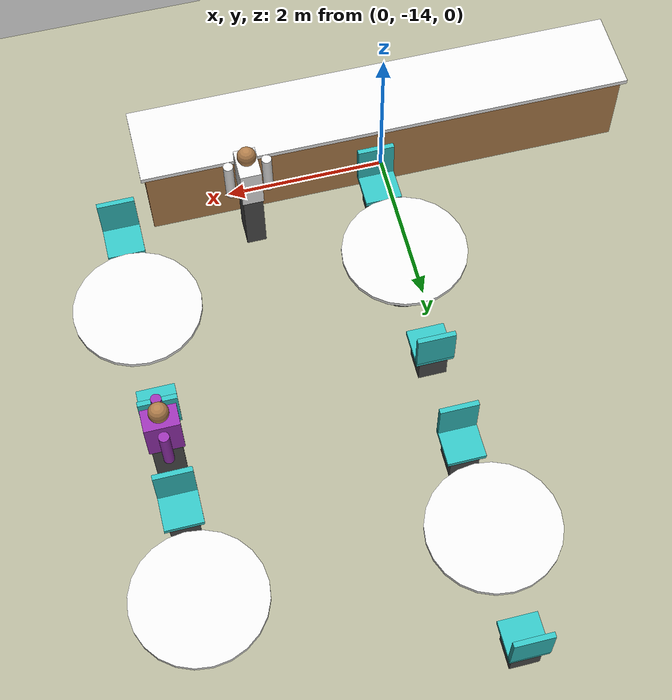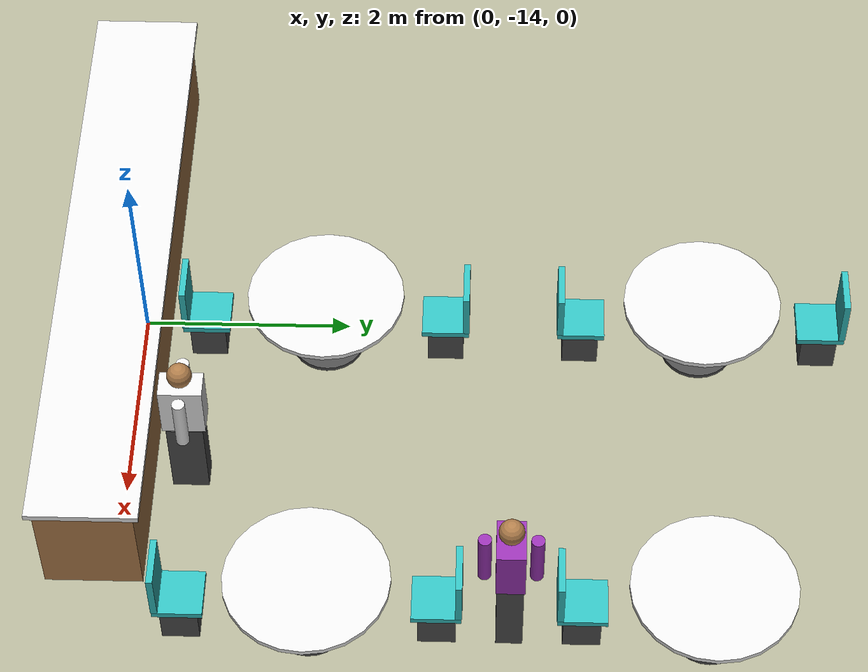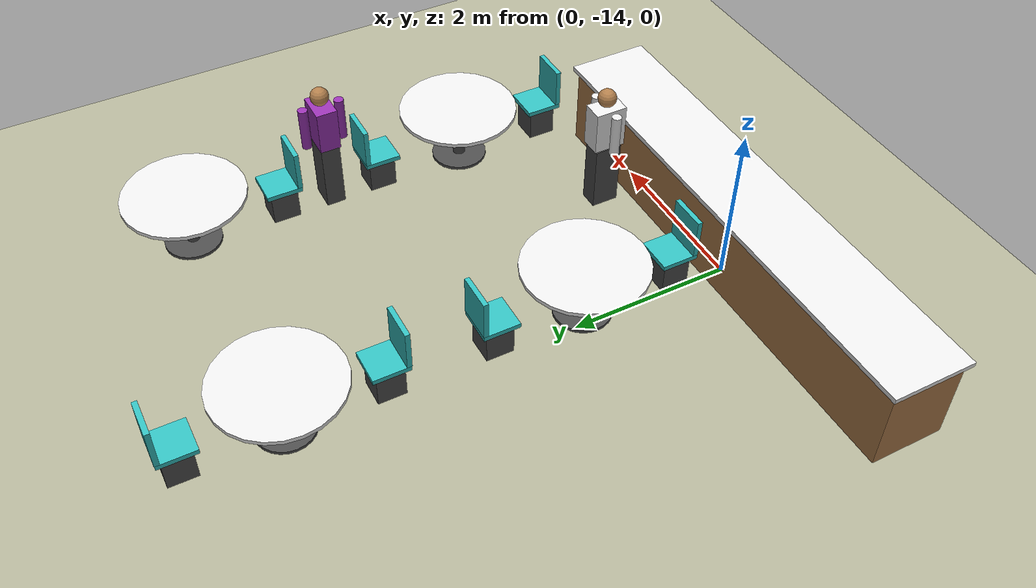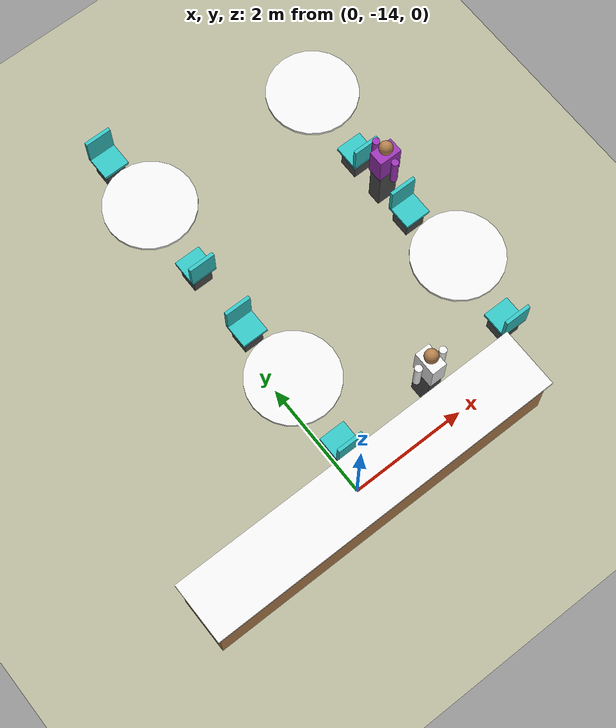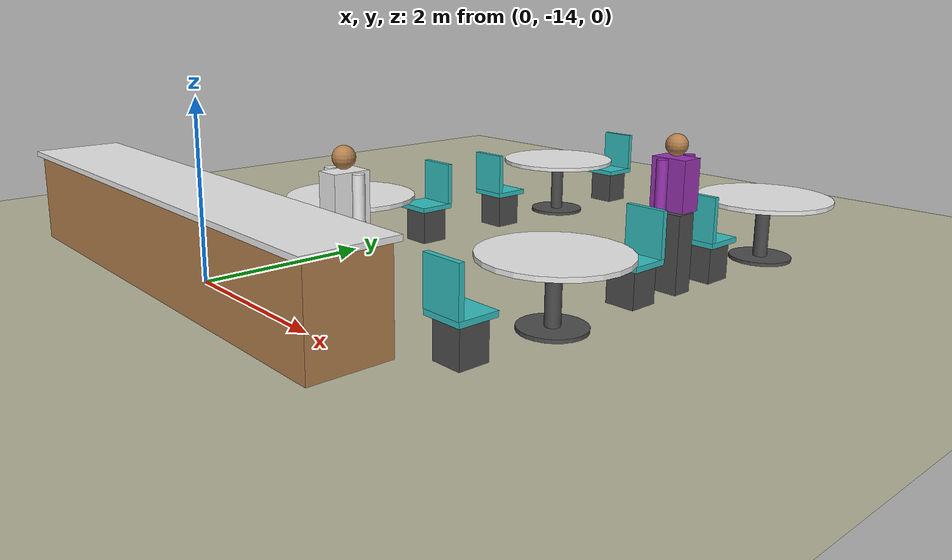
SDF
<sdf version="1.6">
 <world name="smart_building">
  <model name="ground_plane">
   <static>true</static>
   <link name="link">
    <collision name="collision">
     <geometry><plane><normal>0 0 1</normal><size>100 100</size></plane></geometry>
     <surface><friction><ode><mu>1.0</mu><mu2>1.0</mu2></ode></friction></surface>
    </collision>
    <visual name="visual">
     <geometry><plane><normal>0 0 1</normal><size>100 100</size></plane></geometry>
     <material>
      <script><uri>file://media/materials/scripts/gazebo.material</uri><name>Gazebo/Residential</name></script>
     </material>
    </visual>
   </link>
  </model>
  <model name="cafe_table_4">
   <static>true</static>
   <pose>0.2000 -8.6000 0.0000 0.0000 0.0000 0.0000</pose>
   <link name="link_0">
    <pose>0.0000 0.0000 0.7250 0.0000 0.0000 0.0000</pose>
    <collision name="link_0_collision">
     <geometry><cylinder><radius>0.7500</radius><length>0.0500</length></cylinder></geometry>
    </collision>
    <visual name="link_0_visual">
     <geometry><cylinder><radius>0.7500</radius><length>0.0500</length></cylinder></geometry>
     <material>
      <script><uri>file://media/materials/scripts/gazebo.material</uri><name>Gazebo/White</name></script>
     </material>
    </visual>
   </link>
   <link name="link_1">
    <pose>0.0000 0.0000 0.3500 0.0000 0.0000 0.0000</pose>
    <collision name="link_1_collision">
     <geometry><cylinder><radius>0.0800</radius><length>0.7000</length></cylinder></geometry>
    </collision>
    <visual name="link_1_visual">
     <geometry><cylinder><radius>0.0800</radius><length>0.7000</length></cylinder></geometry>
     <material>
      <script><uri>file://media/materials/scripts/gazebo.material</uri><name>Gazebo/DarkGrey</name></script>
     </material>
    </visual>
   </link>
   <link name="link_2">
    <pose>0.0000 0.0000 0.0200 0.0000 0.0000 0.0000</pose>
    <collision name="link_2_collision">
     <geometry><cylinder><radius>0.3500</radius><length>0.0400</length></cylinder></geometry>
    </collision>
    <visual name="link_2_visual">
     <geometry><cylinder><radius>0.3500</radius><length>0.0400</length></cylinder></geometry>
     <material>
      <script><uri>file://media/materials/scripts/gazebo.material</uri><name>Gazebo/DarkGrey</name></script>
     </material>
    </visual>
   </link>
  </model>
  <model name="cafe_chair_4_0">
   <static>true</static>
   <pose>0.2000 -7.4500 0.0000 0.0000 0.0000 3.1416</pose>
   <link name="link_0">
    <pose>0.0000 0.0000 0.4400 0.0000 0.0000 0.0000</pose>
    <collision name="link_0_collision">
     <geometry><box><size>0.4500 0.4500 0.0600</size></box></geometry>
    </collision>
    <visual name="link_0_visual">
     <geometry><box><size>0.4500 0.4500 0.0600</size></box></geometry>
     <material>
      <script><uri>file://media/materials/scripts/gazebo.material</uri><name>Gazebo/Turquoise</name></script>
     </material>
    </visual>
   </link>
   <link name="link_1">
    <pose>0.0000 -0.2000 0.7200 0.0000 0.0000 0.0000</pose>
    <collision name="link_1_collision">
     <geometry><box><size>0.4500 0.0600 0.5000</size></box></geometry>
    </collision>
    <visual name="link_1_visual">
     <geometry><box><size>0.4500 0.0600 0.5000</size></box></geometry>
     <material>
      <script><uri>file://media/materials/scripts/gazebo.material</uri><name>Gazebo/Turquoise</name></script>
     </material>
    </visual>
   </link>
   <link name="link_2">
    <pose>0.0000 0.0000 0.2100 0.0000 0.0000 0.0000</pose>
    <collision name="link_2_collision">
     <geometry><box><size>0.3400 0.3400 0.4200</size></box></geometry>
    </collision>
    <visual name="link_2_visual">
     <geometry><box><size>0.3400 0.3400 0.4200</size></box></geometry>
     <material>
      <script><uri>file://media/materials/scripts/gazebo.material</uri><name>Gazebo/DarkGrey</name></script>
     </material>
    </visual>
   </link>
  </model>
  <model name="cafe_chair_4_1">
   <static>true</static>
   <pose>0.2000 -9.7500 0.0000 0.0000 0.0000 0.0000</pose>
   <link name="link_0">
    <pose>0.0000 0.0000 0.4400 0.0000 0.0000 0.0000</pose>
    <collision name="link_0_collision">
     <geometry><box><size>0.4500 0.4500 0.0600</size></box></geometry>
    </collision>
    <visual name="link_0_visual">
     <geometry><box><size>0.4500 0.4500 0.0600</size></box></geometry>
     <material>
      <script><uri>file://media/materials/scripts/gazebo.material</uri><name>Gazebo/Turquoise</name></script>
     </material>
    </visual>
   </link>
   <link name="link_1">
    <pose>0.0000 -0.2000 0.7200 0.0000 0.0000 0.0000</pose>
    <collision name="link_1_collision">
     <geometry><box><size>0.4500 0.0600 0.5000</size></box></geometry>
    </collision>
    <visual name="link_1_visual">
     <geometry><box><size>0.4500 0.0600 0.5000</size></box></geometry>
     <material>
      <script><uri>file://media/materials/scripts/gazebo.material</uri><name>Gazebo/Turquoise</name></script>
     </material>
    </visual>
   </link>
   <link name="link_2">
    <pose>0.0000 0.0000 0.2100 0.0000 0.0000 0.0000</pose>
    <collision name="link_2_collision">
     <geometry><box><size>0.3400 0.3400 0.4200</size></box></geometry>
    </collision>
    <visual name="link_2_visual">
     <geometry><box><size>0.3400 0.3400 0.4200</size></box></geometry>
     <material>
      <script><uri>file://media/materials/scripts/gazebo.material</uri><name>Gazebo/DarkGrey</name></script>
     </material>
    </visual>
   </link>
  </model>
  <model name="cafe_table_5">
   <static>true</static>
   <pose>3.4000 -8.6000 0.0000 0.0000 0.0000 0.0000</pose>
   <link name="link_0">
    <pose>0.0000 0.0000 0.7250 0.0000 0.0000 0.0000</pose>
    <collision name="link_0_collision">
     <geometry><cylinder><radius>0.7500</radius><length>0.0500</length></cylinder></geometry>
    </collision>
    <visual name="link_0_visual">
     <geometry><cylinder><radius>0.7500</radius><length>0.0500</length></cylinder></geometry>
     <material>
      <script><uri>file://media/materials/scripts/gazebo.material</uri><name>Gazebo/White</name></script>
     </material>
    </visual>
   </link>
   <link name="link_1">
    <pose>0.0000 0.0000 0.3500 0.0000 0.0000 0.0000</pose>
    <collision name="link_1_collision">
     <geometry><cylinder><radius>0.0800</radius><length>0.7000</length></cylinder></geometry>
    </collision>
    <visual name="link_1_visual">
     <geometry><cylinder><radius>0.0800</radius><length>0.7000</length></cylinder></geometry>
     <material>
      <script><uri>file://media/materials/scripts/gazebo.material</uri><name>Gazebo/DarkGrey</name></script>
     </material>
    </visual>
   </link>
   <link name="link_2">
    <pose>0.0000 0.0000 0.0200 0.0000 0.0000 0.0000</pose>
    <collision name="link_2_collision">
     <geometry><cylinder><radius>0.3500</radius><length>0.0400</length></cylinder></geometry>
    </collision>
    <visual name="link_2_visual">
     <geometry><cylinder><radius>0.3500</radius><length>0.0400</length></cylinder></geometry>
     <material>
      <script><uri>file://media/materials/scripts/gazebo.material</uri><name>Gazebo/DarkGrey</name></script>
     </material>
    </visual>
   </link>
  </model>
  <model name="cafe_chair_5_1">
   <static>true</static>
   <pose>3.4000 -9.7500 0.0000 0.0000 0.0000 0.0000</pose>
   <link name="link_0">
    <pose>0.0000 0.0000 0.4400 0.0000 0.0000 0.0000</pose>
    <collision name="link_0_collision">
     <geometry><box><size>0.4500 0.4500 0.0600</size></box></geometry>
    </collision>
    <visual name="link_0_visual">
     <geometry><box><size>0.4500 0.4500 0.0600</size></box></geometry>
     <material>
      <script><uri>file://media/materials/scripts/gazebo.material</uri><name>Gazebo/Turquoise</name></script>
     </material>
    </visual>
   </link>
   <link name="link_1">
    <pose>0.0000 -0.2000 0.7200 0.0000 0.0000 0.0000</pose>
    <collision name="link_1_collision">
     <geometry><box><size>0.4500 0.0600 0.5000</size></box></geometry>
    </collision>
    <visual name="link_1_visual">
     <geometry><box><size>0.4500 0.0600 0.5000</size></box></geometry>
     <material>
      <script><uri>file://media/materials/scripts/gazebo.material</uri><name>Gazebo/Turquoise</name></script>
     </material>
    </visual>
   </link>
   <link name="link_2">
    <pose>0.0000 0.0000 0.2100 0.0000 0.0000 0.0000</pose>
    <collision name="link_2_collision">
     <geometry><box><size>0.3400 0.3400 0.4200</size></box></geometry>
    </collision>
    <visual name="link_2_visual">
     <geometry><box><size>0.3400 0.3400 0.4200</size></box></geometry>
     <material>
      <script><uri>file://media/materials/scripts/gazebo.material</uri><name>Gazebo/DarkGrey</name></script>
     </material>
    </visual>
   </link>
  </model>
  <model name="cafe_table_7">
   <static>true</static>
   <pose>0.2000 -12.2000 0.0000 0.0000 0.0000 0.0000</pose>
   <link name="link_0">
    <pose>0.0000 0.0000 0.7250 0.0000 0.0000 0.0000</pose>
    <collision name="link_0_collision">
     <geometry><cylinder><radius>0.7500</radius><length>0.0500</length></cylinder></geometry>
    </collision>
    <visual name="link_0_visual">
     <geometry><cylinder><radius>0.7500</radius><length>0.0500</length></cylinder></geometry>
     <material>
      <script><uri>file://media/materials/scripts/gazebo.material</uri><name>Gazebo/White</name></script>
     </material>
    </visual>
   </link>
   <link name="link_1">
    <pose>0.0000 0.0000 0.3500 0.0000 0.0000 0.0000</pose>
    <collision name="link_1_collision">
     <geometry><cylinder><radius>0.0800</radius><length>0.7000</length></cylinder></geometry>
    </collision>
    <visual name="link_1_visual">
     <geometry><cylinder><radius>0.0800</radius><length>0.7000</length></cylinder></geometry>
     <material>
      <script><uri>file://media/materials/scripts/gazebo.material</uri><name>Gazebo/DarkGrey</name></script>
     </material>
    </visual>
   </link>
   <link name="link_2">
    <pose>0.0000 0.0000 0.0200 0.0000 0.0000 0.0000</pose>
    <collision name="link_2_collision">
     <geometry><cylinder><radius>0.3500</radius><length>0.0400</length></cylinder></geometry>
    </collision>
    <visual name="link_2_visual">
     <geometry><cylinder><radius>0.3500</radius><length>0.0400</length></cylinder></geometry>
     <material>
      <script><uri>file://media/materials/scripts/gazebo.material</uri><name>Gazebo/DarkGrey</name></script>
     </material>
    </visual>
   </link>
  </model>
  <model name="cafe_chair_7_0">
   <static>true</static>
   <pose>0.2000 -11.0500 0.0000 0.0000 0.0000 3.1416</pose>
   <link name="link_0">
    <pose>0.0000 0.0000 0.4400 0.0000 0.0000 0.0000</pose>
    <collision name="link_0_collision">
     <geometry><box><size>0.4500 0.4500 0.0600</size></box></geometry>
    </collision>
    <visual name="link_0_visual">
     <geometry><box><size>0.4500 0.4500 0.0600</size></box></geometry>
     <material>
      <script><uri>file://media/materials/scripts/gazebo.material</uri><name>Gazebo/Turquoise</name></script>
     </material>
    </visual>
   </link>
   <link name="link_1">
    <pose>0.0000 -0.2000 0.7200 0.0000 0.0000 0.0000</pose>
    <collision name="link_1_collision">
     <geometry><box><size>0.4500 0.0600 0.5000</size></box></geometry>
    </collision>
    <visual name="link_1_visual">
     <geometry><box><size>0.4500 0.0600 0.5000</size></box></geometry>
     <material>
      <script><uri>file://media/materials/scripts/gazebo.material</uri><name>Gazebo/Turquoise</name></script>
     </material>
    </visual>
   </link>
   <link name="link_2">
    <pose>0.0000 0.0000 0.2100 0.0000 0.0000 0.0000</pose>
    <collision name="link_2_collision">
     <geometry><box><size>0.3400 0.3400 0.4200</size></box></geometry>
    </collision>
    <visual name="link_2_visual">
     <geometry><box><size>0.3400 0.3400 0.4200</size></box></geometry>
     <material>
      <script><uri>file://media/materials/scripts/gazebo.material</uri><name>Gazebo/DarkGrey</name></script>
     </material>
    </visual>
   </link>
  </model>
  <model name="cafe_chair_7_1">
   <static>true</static>
   <pose>0.2000 -13.3500 0.0000 0.0000 0.0000 0.0000</pose>
   <link name="link_0">
    <pose>0.0000 0.0000 0.4400 0.0000 0.0000 0.0000</pose>
    <collision name="link_0_collision">
     <geometry><box><size>0.4500 0.4500 0.0600</size></box></geometry>
    </collision>
    <visual name="link_0_visual">
     <geometry><box><size>0.4500 0.4500 0.0600</size></box></geometry>
     <material>
      <script><uri>file://media/materials/scripts/gazebo.material</uri><name>Gazebo/Turquoise</name></script>
     </material>
    </visual>
   </link>
   <link name="link_1">
    <pose>0.0000 -0.2000 0.7200 0.0000 0.0000 0.0000</pose>
    <collision name="link_1_collision">
     <geometry><box><size>0.4500 0.0600 0.5000</size></box></geometry>
    </collision>
    <visual name="link_1_visual">
     <geometry><box><size>0.4500 0.0600 0.5000</size></box></geometry>
     <material>
      <script><uri>file://media/materials/scripts/gazebo.material</uri><name>Gazebo/Turquoise</name></script>
     </material>
    </visual>
   </link>
   <link name="link_2">
    <pose>0.0000 0.0000 0.2100 0.0000 0.0000 0.0000</pose>
    <collision name="link_2_collision">
     <geometry><box><size>0.3400 0.3400 0.4200</size></box></geometry>
    </collision>
    <visual name="link_2_visual">
     <geometry><box><size>0.3400 0.3400 0.4200</size></box></geometry>
     <material>
      <script><uri>file://media/materials/scripts/gazebo.material</uri><name>Gazebo/DarkGrey</name></script>
     </material>
    </visual>
   </link>
  </model>
  <model name="cafe_table_8">
   <static>true</static>
   <pose>3.4000 -12.2000 0.0000 0.0000 0.0000 0.0000</pose>
   <link name="link_0">
    <pose>0.0000 0.0000 0.7250 0.0000 0.0000 0.0000</pose>
    <collision name="link_0_collision">
     <geometry><cylinder><radius>0.7500</radius><length>0.0500</length></cylinder></geometry>
    </collision>
    <visual name="link_0_visual">
     <geometry><cylinder><radius>0.7500</radius><length>0.0500</length></cylinder></geometry>
     <material>
      <script><uri>file://media/materials/scripts/gazebo.material</uri><name>Gazebo/White</name></script>
     </material>
    </visual>
   </link>
   <link name="link_1">
    <pose>0.0000 0.0000 0.3500 0.0000 0.0000 0.0000</pose>
    <collision name="link_1_collision">
     <geometry><cylinder><radius>0.0800</radius><length>0.7000</length></cylinder></geometry>
    </collision>
    <visual name="link_1_visual">
     <geometry><cylinder><radius>0.0800</radius><length>0.7000</length></cylinder></geometry>
     <material>
      <script><uri>file://media/materials/scripts/gazebo.material</uri><name>Gazebo/DarkGrey</name></script>
     </material>
    </visual>
   </link>
   <link name="link_2">
    <pose>0.0000 0.0000 0.0200 0.0000 0.0000 0.0000</pose>
    <collision name="link_2_collision">
     <geometry><cylinder><radius>0.3500</radius><length>0.0400</length></cylinder></geometry>
    </collision>
    <visual name="link_2_visual">
     <geometry><cylinder><radius>0.3500</radius><length>0.0400</length></cylinder></geometry>
     <material>
      <script><uri>file://media/materials/scripts/gazebo.material</uri><name>Gazebo/DarkGrey</name></script>
     </material>
    </visual>
   </link>
  </model>
  <model name="cafe_chair_8_0">
   <static>true</static>
   <pose>3.4000 -11.0500 0.0000 0.0000 0.0000 3.1416</pose>
   <link name="link_0">
    <pose>0.0000 0.0000 0.4400 0.0000 0.0000 0.0000</pose>
    <collision name="link_0_collision">
     <geometry><box><size>0.4500 0.4500 0.0600</size></box></geometry>
    </collision>
    <visual name="link_0_visual">
     <geometry><box><size>0.4500 0.4500 0.0600</size></box></geometry>
     <material>
      <script><uri>file://media/materials/scripts/gazebo.material</uri><name>Gazebo/Turquoise</name></script>
     </material>
    </visual>
   </link>
   <link name="link_1">
    <pose>0.0000 -0.2000 0.7200 0.0000 0.0000 0.0000</pose>
    <collision name="link_1_collision">
     <geometry><box><size>0.4500 0.0600 0.5000</size></box></geometry>
    </collision>
    <visual name="link_1_visual">
     <geometry><box><size>0.4500 0.0600 0.5000</size></box></geometry>
     <material>
      <script><uri>file://media/materials/scripts/gazebo.material</uri><name>Gazebo/Turquoise</name></script>
     </material>
    </visual>
   </link>
   <link name="link_2">
    <pose>0.0000 0.0000 0.2100 0.0000 0.0000 0.0000</pose>
    <collision name="link_2_collision">
     <geometry><box><size>0.3400 0.3400 0.4200</size></box></geometry>
    </collision>
    <visual name="link_2_visual">
     <geometry><box><size>0.3400 0.3400 0.4200</size></box></geometry>
     <material>
      <script><uri>file://media/materials/scripts/gazebo.material</uri><name>Gazebo/DarkGrey</name></script>
     </material>
    </visual>
   </link>
  </model>
  <model name="cafe_chair_8_1">
   <static>true</static>
   <pose>3.4000 -13.3500 0.0000 0.0000 0.0000 0.0000</pose>
   <link name="link_0">
    <pose>0.0000 0.0000 0.4400 0.0000 0.0000 0.0000</pose>
    <collision name="link_0_collision">
     <geometry><box><size>0.4500 0.4500 0.0600</size></box></geometry>
    </collision>
    <visual name="link_0_visual">
     <geometry><box><size>0.4500 0.4500 0.0600</size></box></geometry>
     <material>
      <script><uri>file://media/materials/scripts/gazebo.material</uri><name>Gazebo/Turquoise</name></script>
     </material>
    </visual>
   </link>
   <link name="link_1">
    <pose>0.0000 -0.2000 0.7200 0.0000 0.0000 0.0000</pose>
    <collision name="link_1_collision">
     <geometry><box><size>0.4500 0.0600 0.5000</size></box></geometry>
    </collision>
    <visual name="link_1_visual">
     <geometry><box><size>0.4500 0.0600 0.5000</size></box></geometry>
     <material>
      <script><uri>file://media/materials/scripts/gazebo.material</uri><name>Gazebo/Turquoise</name></script>
     </material>
    </visual>
   </link>
   <link name="link_2">
    <pose>0.0000 0.0000 0.2100 0.0000 0.0000 0.0000</pose>
    <collision name="link_2_collision">
     <geometry><box><size>0.3400 0.3400 0.4200</size></box></geometry>
    </collision>
    <visual name="link_2_visual">
     <geometry><box><size>0.3400 0.3400 0.4200</size></box></geometry>
     <material>
      <script><uri>file://media/materials/scripts/gazebo.material</uri><name>Gazebo/DarkGrey</name></script>
     </material>
    </visual>
   </link>
  </model>
  <model name="cafe_counter">
   <static>true</static>
   <pose>0.0000 -14.2000 0.0000 0.0000 0.0000 0.0000</pose>
   <link name="link_0">
    <pose>0.0000 0.0000 0.5250 0.0000 0.0000 0.0000</pose>
    <collision name="link_0_collision">
     <geometry><box><size>6.0000 0.9000 1.0500</size></box></geometry>
    </collision>
    <visual name="link_0_visual">
     <geometry><box><size>6.0000 0.9000 1.0500</size></box></geometry>
     <material>
      <script><uri>file://media/materials/scripts/gazebo.material</uri><name>Gazebo/Wood</name></script>
     </material>
    </visual>
   </link>
   <link name="link_1">
    <pose>0.0000 0.0000 1.0800 0.0000 0.0000 0.0000</pose>
    <collision name="link_1_collision">
     <geometry><box><size>6.1000 1.0200 0.0600</size></box></geometry>
    </collision>
    <visual name="link_1_visual">
     <geometry><box><size>6.1000 1.0200 0.0600</size></box></geometry>
     <material>
      <script><uri>file://media/materials/scripts/gazebo.material</uri><name>Gazebo/White</name></script>
     </material>
    </visual>
   </link>
  </model>
  <model name="person_cafe_0">
   <static>true</static>
   <pose>1.8000 -13.4000 0.0000 0.0000 0.0000 -1.5708</pose>
   <link name="link_0">
    <pose>0.0000 0.0000 0.4250 0.0000 0.0000 0.0000</pose>
    <collision name="link_0_collision">
     <geometry><box><size>0.3400 0.2400 0.8500</size></box></geometry>
    </collision>
    <visual name="link_0_visual">
     <geometry><box><size>0.3400 0.2400 0.8500</size></box></geometry>
     <material>
      <script><uri>file://media/materials/scripts/gazebo.material</uri><name>Gazebo/DarkGrey</name></script>
     </material>
    </visual>
   </link>
   <link name="link_1">
    <pose>0.0000 0.0000 1.1500 0.0000 0.0000 0.0000</pose>
    <collision name="link_1_collision">
     <geometry><box><size>0.4000 0.2600 0.5500</size></box></geometry>
    </collision>
    <visual name="link_1_visual">
     <geometry><box><size>0.4000 0.2600 0.5500</size></box></geometry>
     <material>
      <script><uri>file://media/materials/scripts/gazebo.material</uri><name>Gazebo/White</name></script>
     </material>
    </visual>
   </link>
   <link name="link_2">
    <pose>0.0000 0.2300 1.1500 0.0000 0.0000 0.0000</pose>
    <collision name="link_2_collision">
     <geometry><cylinder><radius>0.0600</radius><length>0.5500</length></cylinder></geometry>
    </collision>
    <visual name="link_2_visual">
     <geometry><cylinder><radius>0.0600</radius><length>0.5500</length></cylinder></geometry>
     <material>
      <script><uri>file://media/materials/scripts/gazebo.material</uri><name>Gazebo/White</name></script>
     </material>
    </visual>
   </link>
   <link name="link_3">
    <pose>0.0000 -0.2300 1.1500 0.0000 0.0000 0.0000</pose>
    <collision name="link_3_collision">
     <geometry><cylinder><radius>0.0600</radius><length>0.5500</length></cylinder></geometry>
    </collision>
    <visual name="link_3_visual">
     <geometry><cylinder><radius>0.0600</radius><length>0.5500</length></cylinder></geometry>
     <material>
      <script><uri>file://media/materials/scripts/gazebo.material</uri><name>Gazebo/White</name></script>
     </material>
    </visual>
   </link>
   <link name="link_4">
    <pose>0.0000 0.0000 1.5500 0.0000 0.0000 0.0000</pose>
    <collision name="link_4_collision"><geometry><sphere><radius>0.1150</radius></sphere></geometry></collision>
    <visual name="link_4_visual">
     <geometry><sphere><radius>0.1150</radius></sphere></geometry>
     <material>
      <script><uri>file://media/materials/scripts/gazebo.material</uri><name>Gazebo/Wood</name></script>
     </material>
    </visual>
   </link>
  </model>
  <model name="person_cafe_2">
   <static>true</static>
   <pose>3.4000 -10.4000 0.0000 0.0000 0.0000 0.0000</pose>
   <link name="link_0">
    <pose>0.0000 0.0000 0.4250 0.0000 0.0000 0.0000</pose>
    <collision name="link_0_collision">
     <geometry><box><size>0.3400 0.2400 0.8500</size></box></geometry>
    </collision>
    <visual name="link_0_visual">
     <geometry><box><size>0.3400 0.2400 0.8500</size></box></geometry>
     <material>
      <script><uri>file://media/materials/scripts/gazebo.material</uri><name>Gazebo/DarkGrey</name></script>
     </material>
    </visual>
   </link>
   <link name="link_1">
    <pose>0.0000 0.0000 1.1500 0.0000 0.0000 0.0000</pose>
    <collision name="link_1_collision">
     <geometry><box><size>0.4000 0.2600 0.5500</size></box></geometry>
    </collision>
    <visual name="link_1_visual">
     <geometry><box><size>0.4000 0.2600 0.5500</size></box></geometry>
     <material>
      <script><uri>file://media/materials/scripts/gazebo.material</uri><name>Gazebo/Purple</name></script>
     </material>
    </visual>
   </link>
   <link name="link_2">
    <pose>0.0000 0.2300 1.1500 0.0000 0.0000 0.0000</pose>
    <collision name="link_2_collision">
     <geometry><cylinder><radius>0.0600</radius><length>0.5500</length></cylinder></geometry>
    </collision>
    <visual name="link_2_visual">
     <geometry><cylinder><radius>0.0600</radius><length>0.5500</length></cylinder></geometry>
     <material>
      <script><uri>file://media/materials/scripts/gazebo.material</uri><name>Gazebo/Purple</name></script>
     </material>
    </visual>
   </link>
   <link name="link_3">
    <pose>0.0000 -0.2300 1.1500 0.0000 0.0000 0.0000</pose>
    <collision name="link_3_collision">
     <geometry><cylinder><radius>0.0600</radius><length>0.5500</length></cylinder></geometry>
    </collision>
    <visual name="link_3_visual">
     <geometry><cylinder><radius>0.0600</radius><length>0.5500</length></cylinder></geometry>
     <material>
      <script><uri>file://media/materials/scripts/gazebo.material</uri><name>Gazebo/Purple</name></script>
     </material>
    </visual>
   </link>
   <link name="link_4">
    <pose>0.0000 0.0000 1.5500 0.0000 0.0000 0.0000</pose>
    <collision name="link_4_collision"><geometry><sphere><radius>0.1150</radius></sphere></geometry></collision>
    <visual name="link_4_visual">
     <geometry><sphere><radius>0.1150</radius></sphere></geometry>
     <material>
      <script><uri>file://media/materials/scripts/gazebo.material</uri><name>Gazebo/Wood</name></script>
     </material>
    </visual>
   </link>
  </model>
 </world>
</sdf>
